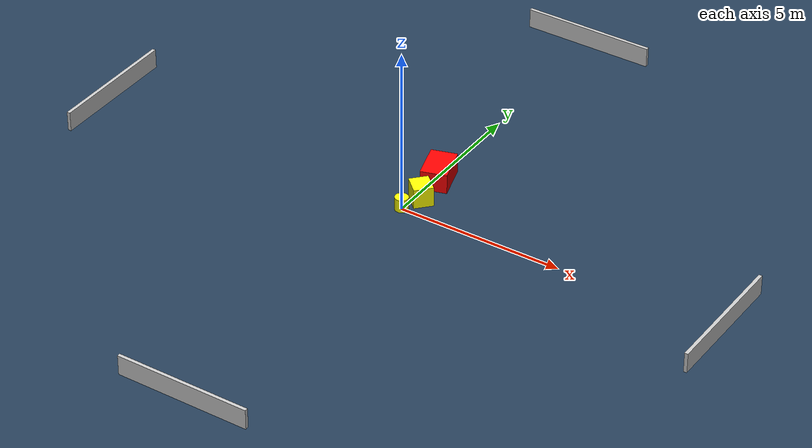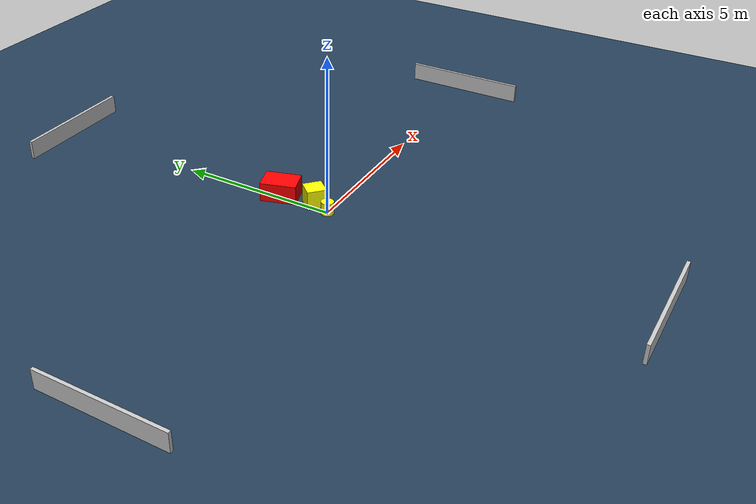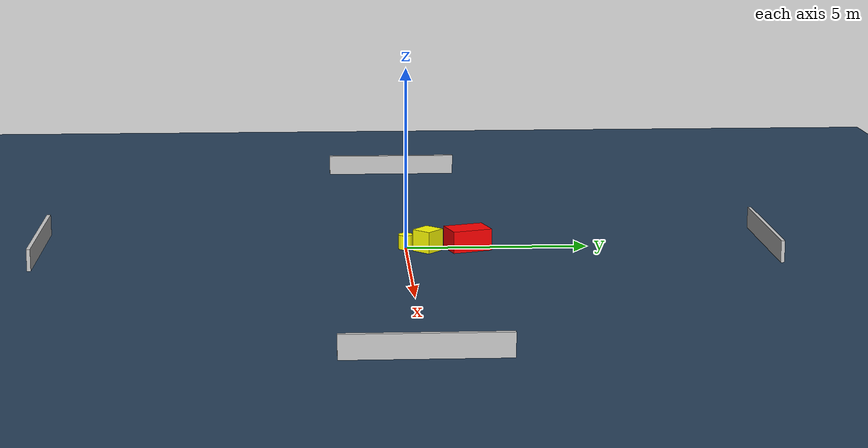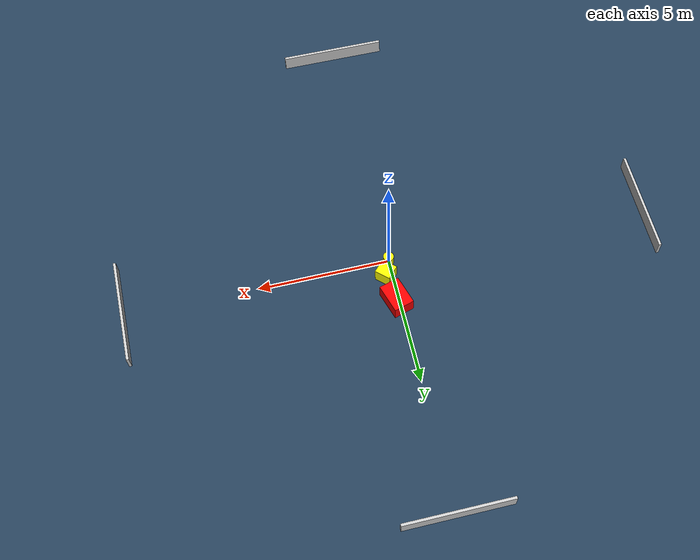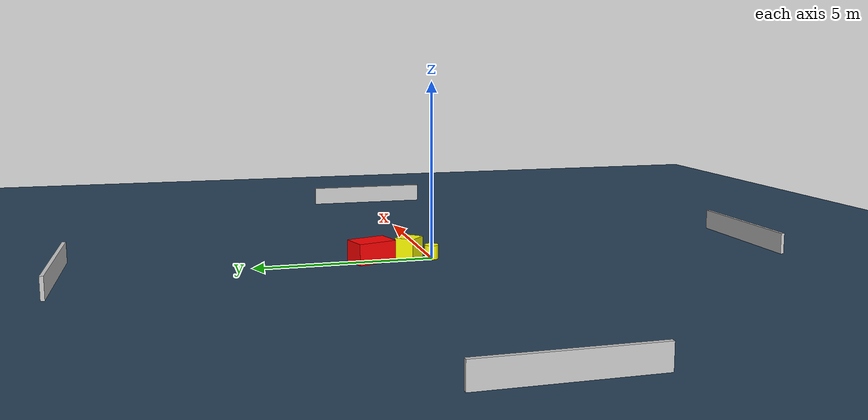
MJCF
<?xml version="1.0" ?>
<mujoco model="generated_environment">
  <option timestep="0.01" integrator="RK4" cone="elliptic"/>
  <default>
    <geom density="1"/>
  </default>
  <asset>
    <texture builtin="gradient" height="3072" name="skybox" rgb1="0.3 0.5 0.7" rgb2="0 0 0" type="skybox" width="512"/>
    <texture builtin="checker" height="300" name="groundplane" rgb1="0.2 0.3 0.4" rgb2="0.1 0.2 0.3" type="2d" width="300"/>
    <material name="groundplane" reflectance="0.2" texrepeat="5 5" texture="groundplane"/>
  </asset>
  <worldbody>
    <light dir="0 0 -1" directional="true" pos="0 0 1.5"/>
    <geom condim="3" friction="0.5 0.005 0.001" material="groundplane" name="floor" pos="0 0 0" size="0 0 0.05" type="plane"/>
    <body name="walls">
      <geom name="wall_1" condim="4" pos="-10.0 0.0 0.3" rgba="0.800000011920929 0.800000011920929 0.800000011920929 1.0" size="0.05 2.0 0.3" type="box"/>
      <geom name="wall_2" condim="4" pos="10.0 0.0 0.3" rgba="0.800000011920929 0.800000011920929 0.800000011920929 1.0" size="0.05 2.0 0.3" type="box"/>
      <geom name="wall_3" condim="4" pos="0.0 -10.0 0.3" rgba="0.800000011920929 0.800000011920929 0.800000011920929 1.0" size="2.0 0.05 0.3" type="box"/>
      <geom name="wall_4" condim="4" pos="0.0 10.0 0.3" rgba="0.800000011920929 0.800000011920929 0.800000011920929 1.0" size="2.0 0.05 0.3" type="box"/>
    </body>
    <body name="robot">
      <joint name="joint_x" type="slide" pos="0 0 0" axis="1 0 0"/>
      <joint name="joint_y" type="slide" pos="0 0 0" axis="0 1 0"/>
      <geom name="robot" type="cylinder" pos="0.0 0.0 0.2" size="0.2 0.2 0.0" mass="5.0" friction="1.0 0.005 0.0001" condim="4" rgba="1.0 1.0 0.0 1.0"/>
    </body>
    <body name="obstacle_1_movable">
      <geom name="obstacle_1_movable" condim="4" pos="0.24229070834603894 0.5983742920971168 0.3" euler="0 0 227.5688449651311" friction="0.0 0.005 0.001" rgba="1.0 1.0 0.0 1.0" size="0.28632787735150744 0.3022121208844888 0.3" type="box" mass="0.1"/>
      <joint type="free"/>
    </body>
    <body name="obstacle_2_static">
      <geom name="obstacle_2_static" condim="4" pos="0.10696527587949181 1.7064552455064048 0.3" euler="0 0 107.1107092460199" friction="0.0 0.005 0.001" rgba="1.0 0.0 0.0 1.0" size="0.5587118159631534 0.38870340547210375 0.3" type="box"/>
    </body>
  </worldbody>
  <actuator>
    <motor name="actuator_x" joint="joint_x" gear="1" ctrlrange="-1 1"/>
    <motor name="actuator_y" joint="joint_y" gear="1" ctrlrange="-1 1"/>
  </actuator>
</mujoco>
